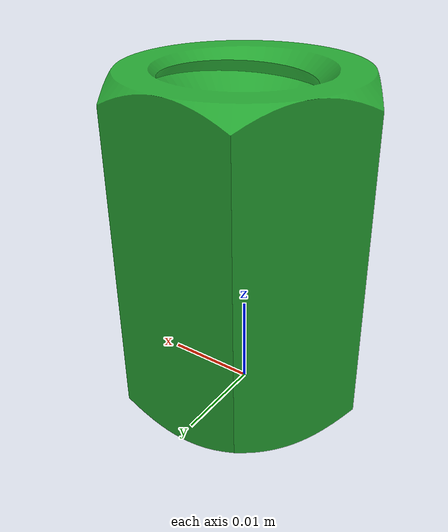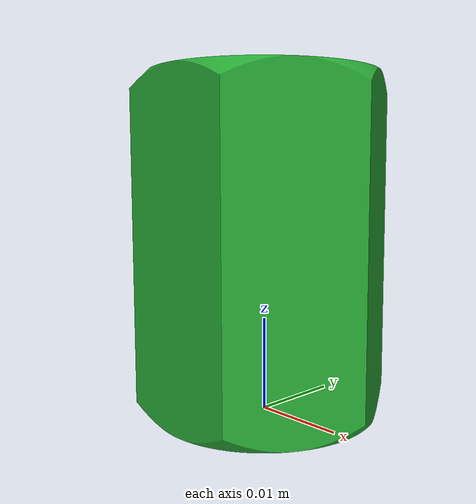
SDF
<?xml version="1.0"?>
<sdf version="1.4">
         <model name="NutJoiner18x9">
             <static>true</static>
             <link name="link">
                 <pose>0 0 0 0 0 0</pose>
                 <inertial>
                     <pose>-1.38994e-05 -2.184e-07 0.0180013285 0 0 0 </pose>
                     <mass>1.1e-05</mass>
                     <inertia>
                         <ixx>1.71997529112e-09</ixx>
                         <ixy>-3.16993e-15</ixy>
                         <ixz>-2.188622e-14</ixz>
                         <iyy>1.7201800142e-09</iyy>
                         <iyz>1.61776443e-12</iyz>
                         <izz>1.18755023322e-09</izz>
                     </inertia>
                 </inertial>

                 <visual name="visual">
                     <geometry>
                         <mesh>
                             <uri>model://NutJoiner18x9/meshes/NutJoiner18x9.stl</uri>
                         </mesh>
                     </geometry>
                     <material>
                         <script>
                             <uri>file://media/materials/scripts/gazebo.material</uri>
                             <name>Gazebo/Green</name>
                         </script>
                     </material>
                 </visual>

                 <collision name="collision">
                     <geometry>
                         <mesh>
                             <uri>model://NutJoiner18x9/meshes/NutJoiner18x9.stl</uri>
                         </mesh>
                     </geometry>
                 </collision>
             </link>
         </model>
     </sdf>
